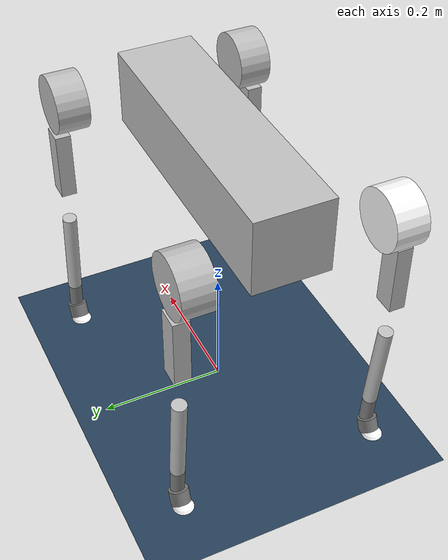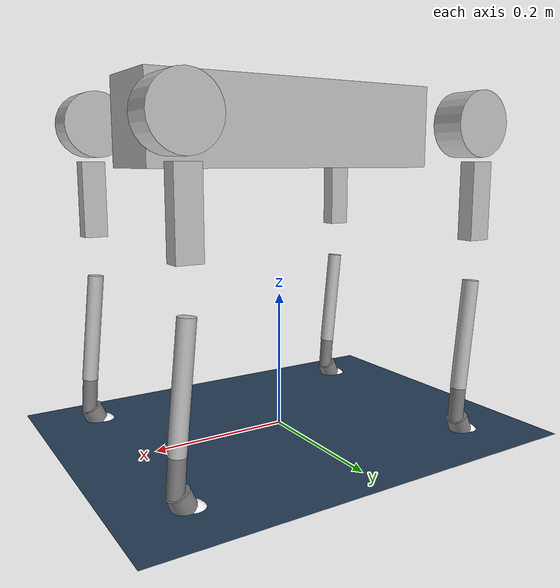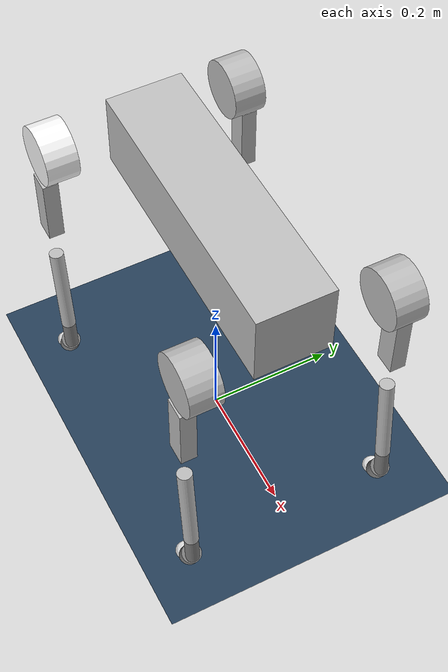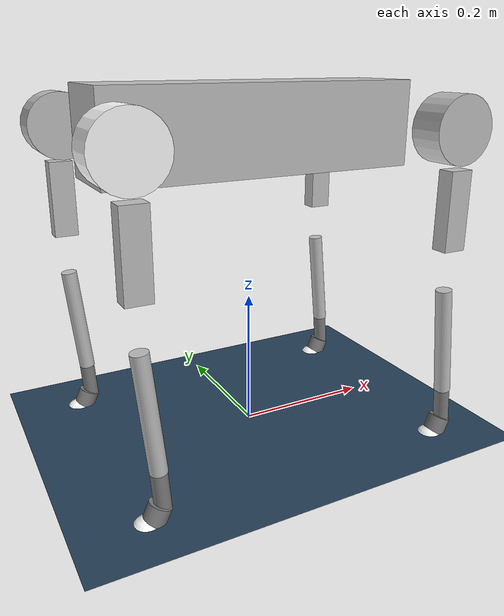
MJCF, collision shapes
<mujoco model="dog_rl scene positional">
  <!-- 基于 TOE_dog2/xml/scene.xml，改为位置控制版 -->
  <!-- 改动1：include 路径指向同目录的 dog_positional.xml（位置控制方案） -->
  <!-- 改动2：删除原 scene 的楼梯/断桥/高墙等场地 geom，只保留干净地板 -->
  <!--        原因：Step 1 验证站立 + 后续训练 trot 都不需要这些障碍物 -->
  <include file="dog_positional.xml"/>

  <statistic center="0 0 0.1" extent="0.8"/>

  <visual>
    <headlight diffuse="0.6 0.6 0.6" ambient="0.3 0.3 0.3" specular="0 0 0"/>
    <rgba haze="0.15 0.25 0.35 1"/>
    <global azimuth="-130" elevation="-20"/>
  </visual>

  <asset>
    <texture type="skybox" builtin="gradient" rgb1="0.3 0.5 0.7" rgb2="0 0 0" width="512" height="3072"/>
    <texture type="2d" name="groundplane" builtin="checker" mark="edge" rgb1="0.2 0.3 0.4" rgb2="0.1 0.2 0.3"
      markrgb="0.8 0.8 0.8" width="300" height="300"/>
    <material name="groundplane" texture="groundplane" texuniform="true" texrepeat="5 5" reflectance="0.2"/>
  </asset>

  <worldbody>
    <light pos="0 0 1.5" dir="0 0 -1" directional="true"/>
    <geom name="floor" size="0 0 0.05" type="plane" material="groundplane" friction="1.2 0.1 0.01"/>
  </worldbody>
</mujoco>

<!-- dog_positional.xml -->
<mujoco model="dog_positional">
  <!-- 基于 TOE_dog2/xml/dog.xml，按 agents.md 决策1 改造为位置控制方案 -->
  <!-- 改动1：meshdir 改为绝对路径，指向原 TOE_dog2 资产目录（不复制 STL） -->
  <compiler angle="radian" meshdir="d:/data/Trae/robot-dog/TOE_dog2/xml/assets" autolimits="true" />

  <option cone="elliptic" impratio="100" />
  <default>
    <default class="dog">
      <geom friction="0.4" margin="0.001" condim="1"/>
      <joint axis="0 1 0" damping="0.1" armature="0.01" frictionloss="0.2"/>
      <default class="abduction">
        <joint axis="1 0 0" range="-1.0472 1.0472"/>
      </default>
      <default class="hip">
        <default class="front_hip">
          <joint range="-1.5708 3.4907"/>
        </default>
        <default class="back_hip">
          <joint range="-0.5236 4.5379"/>
        </default>
      </default>
      <default class="knee">
        <joint range="-2.7227 -0.83776"/>
      </default>
      <default class="visual">
        <geom type="mesh" contype="0" conaffinity="0" group="2"/>
      </default>
      <default class="collision">
        <geom group="3"/>
        <default class="foot">
          <geom size="0.022" pos="-0.002 0 -0.213" priority="1" condim="6" friction="0.9 0.02 0.01"/>
        </default>
      </default>
    </default>
  </default>
  <asset>
    <mesh name="base" file="base.STL"/>
    <mesh name="FL_hip" file="FL_hip.STL"/>
    <mesh name="L_thigh" file="L_thigh.STL"/>
    <mesh name="calf" file="calf.STL"/>
    <mesh name="foot" file="foot.stl"/>
    <mesh name="FR_hip" file="FR_hip.STL"/>
    <mesh name="R_thigh" file="R_thigh.STL"/>
    <mesh name="RL_hip" file="RL_hip.STL"/>
    <mesh name="RR_hip" file="RR_hip.STL"/>
  </asset>

  <worldbody>
    <body name="base_link" pos="0 0 0.445" childclass="dog">
    <freejoint />
    <inertial pos="9.86379408949578E-05 -0.000228650036753486 -0.00925201672369771" quat="-0.000543471 0.713435 -0.00173769 0.700719"
        mass="6.5" diaginertia="0.109146 0.091188 0.0290862" />
    <geom type="mesh" contype="0" conaffinity="0" group="1" density="0" rgba="0.752941 0.752941 0.752941 1" mesh="base"/>

    <geom size="0.225 0.06 0.06" type="box" rgba="0.752941 0.752941 0.752941 1" class="collision"/>

    <site name='imu' size='0.01' pos='0.0 0 0.0'/>
    <body name="FL_hip" pos="0.22337 0.06 0">
      <inertial pos="-0.00478669 1.90134e-05 0.000220638" quat="0.543385 0.393149 0.59332 0.445126" mass="1.06948" diaginertia="0.000616962 0.00060064 0.000553598"/>
      <joint name="FL_hip_joint" pos="0 0 0" axis="1 0 0" range="-1 1" actuatorfrcrange="-20 20"/>
      <geom type="mesh" contype="0" conaffinity="0" group="1" density="0" rgba="0.752941 0.752941 0.752941 1" mesh="FL_hip" class="visual"/>
      <geom size="0.046 0.025" pos="0 0.09 0" quat="0.707107 0.707107 0 0" type="cylinder" rgba="0.752941 0.752941 0.752941 1" class="collision"/>
      <body name="FL_thigh" pos="0 0.1039 0">
        <inertial pos="-0.0023115 -0.0259576 -0.0356322" quat="0.992657 -0.109729 0.0350175 0.0369386" mass="1.55793" diaginertia="0.00600418 0.0059368 0.00120337"/>
        <joint name="FL_thigh_joint" pos="0 0 0" axis="0 1 0" range="-1.5 3" actuatorfrcrange="-20 20"/>
        <geom type="mesh" contype="0" conaffinity="0" group="1" density="0" rgba="0.752941 0.752941 0.752941 1" mesh="L_thigh"/>
        <geom size="0.055 0.01225 0.017" pos="0 0 -0.1065" quat="0.707107 0 0.707107 0" type="box" rgba="0.752941 0.752941 0.752941 1" class="collision"/>
        <body name="FL_calf" pos="0 0 -0.22">
          <inertial pos="0.00621509 -3.74074e-05 -0.131004" quat="0.707636 -0.00832079 -0.00797709 0.706483" mass="0.336118" diaginertia="0.00319573 0.00318278 5.01358e-05"/>
          <joint name="FL_calf_joint" pos="0 0 0" axis="0 1 0" range="-2.5 -0.85" actuatorfrcrange="-25 25"/>
          <geom type="mesh" contype="0" conaffinity="0" group="1" density="0" rgba="0.752941 0.752941 0.752941 1" mesh="calf"/>
          <geom size="0.0115 0.08" pos="0.008 0 -0.08" quat="0.99875 0 -0.0499792 0" type="cylinder" rgba="0.752941 0.752941 0.752941 1" class="collision"/>
          <geom size="0.011 0.025" pos="0.0172383 0 -0.184129" quat="0.99935 0 -0.0360572 0" type="cylinder" class="collision"/>
          <geom size="0.0155 0.016" pos="0.00980871 0 -0.219354" quat="0.979277 0 0.202524 0" type="cylinder" class="collision"/>
          <geom pos="0 0 -0.24" quat="1 0 0 0" type="mesh" contype="0" conaffinity="0" group="1" density="0" rgba="1 1 1 1" mesh="foot"/>
          <geom size="0.022" pos="-0.002 0 -0.24" rgba="1 1 1 1" class="foot"/>
        </body>
      </body>
    </body>
    <body name="FR_hip" pos="0.22337 -0.06 0">
      <inertial pos="0 0 0" quat="0.59332 0.445126 0.543385 0.393149" mass="1.06948" diaginertia="0.000616962 0.00060064 0.000553598"/>
      <joint name="FR_hip_joint" pos="0 0 0" axis="1 0 0" range="-1 1" actuatorfrcrange="-20 20"/>
      <geom type="mesh" contype="0" conaffinity="0" group="1" density="0" rgba="0.752941 0.752941 0.752941 1" mesh="FR_hip"/>
      <geom size="0.046 0.025" pos="0 -0.09 0" quat="0.707107 0.707107 0 0" type="cylinder" rgba="0.752941 0.752941 0.752941 1" class="collision"/>
      <body name="FR_thigh" pos="0 -0.1039 0">
        <inertial pos="-0.00102168 0.0347852 -0.0207384" quat="0.992657 -0.109729 0.0350175 0.0369386" mass="1.55793" diaginertia="0.00600418 0.0059368 0.00120337"/>
        <joint name="FR_thigh_joint" pos="0 0 0" axis="0 1 0" range="-1.5 3" actuatorfrcrange="-20 20"/>
        <geom type="mesh" contype="0" conaffinity="0" group="1" density="0" rgba="0.752941 0.752941 0.752941 1" mesh="R_thigh"/>
        <geom size="0.055 0.01225 0.017" pos="0 0 -0.1065" quat="0.707107 0 0.707107 0" type="box" rgba="0.752941 0.752941 0.752941 1" class="collision"/>
        <body name="FR_calf" pos="0 0 -0.22">
          <inertial pos="0.00621509 -3.74074e-05 -0.131004" quat="0.707636 -0.00832079 -0.00797709 0.706483" mass="0.336118" diaginertia="0.00319573 0.00318278 5.01358e-05"/>
          <joint name="FR_calf_joint" pos="0 0 0" axis="0 1 0" range="-2.5 -0.85" actuatorfrcrange="-25 25"/>
          <geom type="mesh" contype="0" conaffinity="0" group="1" density="0" rgba="0.752941 0.752941 0.752941 1" mesh="calf"/>
          <geom size="0.0115 0.08" pos="0.008 0 -0.08" quat="0.99875 0 -0.0499792 0" type="cylinder" rgba="0.752941 0.752941 0.752941 1" class="collision"/>
          <geom size="0.011 0.025" pos="0.0172383 0 -0.184129" quat="0.99935 0 -0.0360572 0" type="cylinder" class="collision"/>
          <geom size="0.0155 0.016" pos="0.00980871 0 -0.219354" quat="0.979277 0 0.202524 0" type="cylinder" class="collision"/>
          <geom pos="0 0 -0.24" quat="1 0 0 0" type="mesh" contype="0" conaffinity="0" group="1" density="0" rgba="1 1 1 1" mesh="foot"/>
          <geom size="0.022" pos="-0.002 0 -0.24" rgba="1 1 1 1" class="foot"/>
        </body>
      </body>
    </body>
    <body name="RL_hip" pos="-0.22337 0.06 0">
      <inertial pos="0.00478669 1.87933e-05 -0.000220657" quat="0.445371 0.593125 0.393326 0.54327" mass="1.06948" diaginertia="0.000616955 0.000600636 0.000553598"/>
      <joint name="RL_hip_joint" pos="0 0 0" axis="1 0 0" range="-1 1" actuatorfrcrange="-20 20"/>
      <geom type="mesh" contype="0" conaffinity="0" group="1" density="0" rgba="0.752941 0.752941 0.752941 1" mesh="RL_hip"/>
      <geom size="0.046 0.025" pos="0 0.09 0" quat="0.707107 0.707107 0 0" type="cylinder" rgba="0.752941 0.752941 0.752941 1" class="collision"/>
      <body name="RL_thigh" pos="0 0.1039 0">
        <inertial pos="-0.00245813 -0.0259576 -0.0351974" quat="0.990985 0.110735 0.0396787 -0.0641195" mass="1.55025" diaginertia="0.00570289 0.00563221 0.00120498"/>
        <joint name="RL_thigh_joint" pos="0 0 0" axis="0 1 0" range="-1.5 3" actuatorfrcrange="-20 20"/>
        <geom type="mesh" contype="0" conaffinity="0" group="1" density="0" rgba="0.752941 0.752941 0.752941 1" mesh="L_thigh"/>
        <geom size="0.055 0.01225 0.017" pos="0 0 -0.1065" quat="0.707107 0 0.707107 0" type="box" rgba="0.752941 0.752941 0.752941 1" class="collision"/>
        <body name="RL_calf" pos="0 0 -0.22">
          <inertial pos="0.00621509 -3.74074e-05 -0.131004" quat="0.707636 -0.00832079 -0.00797709 0.706483" mass="0.336118" diaginertia="0.00319573 0.00318278 5.01358e-05"/>
          <joint name="RL_calf_joint" pos="0 0 0" axis="0 1 0" range="-2.5 -0.85" actuatorfrcrange="-25 25"/>
          <geom type="mesh" contype="0" conaffinity="0" group="1" density="0" rgba="0.752941 0.752941 0.752941 1" mesh="calf"/>
          <geom size="0.0115 0.08" pos="0.008 0 -0.08" quat="0.99875 0 -0.0499792 0" type="cylinder" rgba="0.752941 0.752941 0.752941 1" class="collision"/>
          <geom size="0.011 0.025" pos="0.0172383 0 -0.184129" quat="0.99935 0 -0.0360572 0" type="cylinder" class="collision"/>
          <geom size="0.0155 0.016" pos="0.00980871 0 -0.219354" quat="0.979277 0 0.202524 0" type="cylinder" class="collision"/>
          <geom pos="0 0 -0.24" quat="1 0 0 0" type="mesh" contype="0" conaffinity="0" group="1" density="0" rgba="1 1 1 1" mesh="foot"/>
          <geom size="0.022" pos="-0.002 0 -0.24" rgba="1 1 1 1" class="foot"/>
        </body>
      </body>
    </body>
    <body name="RR_hip" pos="-0.22337 -0.06 0">
      <inertial pos="0 0 0" quat="0.393382 0.543235 0.445412 0.593089" mass="1.06948" diaginertia="0.000616964 0.000600637 0.000553599"/>
      <joint name="RR_hip_joint" pos="0 0 0" axis="1 0 0" range="-1 1" actuatorfrcrange="-20 20"/>
      <geom type="mesh" contype="0" conaffinity="0" group="1" density="0" rgba="1 1 1 1" mesh="RR_hip"/>
      <geom size="0.046 0.025" pos="0 -0.09 0" quat="0.707107 0.707107 0 0" type="cylinder" rgba="1 1 1 1" class="collision"/>
      <body name="RR_thigh" pos="0 -0.1039 0">
        <inertial pos="-0.000904252 0.0347851 -0.0209699" quat="0.99094 -0.11144 0.0403121 0.0632004" mass="1.55005" diaginertia="0.00570564 0.00563926 0.00120469"/>
        <joint name="RR_thigh_joint" pos="0 0 0" axis="0 1 0" range="-1.5 3" actuatorfrcrange="-20 20"/>
        <geom type="mesh" contype="0" conaffinity="0" group="1" density="0" rgba="0.752941 0.752941 0.752941 1" mesh="R_thigh"/>
        <geom size="0.055 0.01225 0.017" pos="0 0 -0.1065" quat="0.707107 0 0.707107 0" type="box" rgba="0.752941 0.752941 0.752941 1" class="collision"/>
        <body name="RR_calf" pos="0 0 -0.22">
          <inertial pos="0.00624462 -3.74074e-05 -0.131053" quat="0.70761 -0.00840943 -0.00806572 0.706507" mass="0.336118" diaginertia="0.00319826 0.00318522 5.02364e-05"/>
          <joint name="RR_calf_joint" pos="0 0 0" axis="0 1 0" range="-2.5 -0.85" actuatorfrcrange="-25 25"/>
          <geom type="mesh" contype="0" conaffinity="0" group="1" density="0" rgba="0.752941 0.752941 0.752941 1" mesh="calf"/>
          <geom size="0.0115 0.08" pos="0.008 0 -0.08" quat="0.99875 0 -0.0499792 0" type="cylinder" rgba="0.752941 0.752941 0.752941 1" class="collision"/>
          <geom size="0.011 0.025" pos="0.0174683 0 -0.184509" quat="0.99935 0 -0.0360572 0" type="cylinder" class="collision"/>
          <geom size="0.0155 0.016" pos="0.0100387 0 -0.219734" quat="0.979277 0 0.202524 0" type="cylinder" class="collision"/>
          <geom pos="0 0 -0.24" quat="1 0 0 0" type="mesh" contype="0" conaffinity="0" group="1" density="0" rgba="1 1 1 1" mesh="foot"/>
          <geom size="0.022" pos="-0.002 0 -0.24" rgba="1 1 1 1" class="foot"/>
        </body>
      </body>
      </body>

    </body>
  </worldbody>

  <!-- kp=60, kv=2（agents.md 决策1，对齐实机 MIT 模式默认） -->
  <!-- ctrlrange 取关节角限位（autolimits=true 也已继承，显式写出更清晰） -->
  <!-- 顺序：[FL, FR, RL, RR] × [hip, thigh, calf]，与 q_default 一致 -->
  <actuator>
    <position name="FL_hip"    joint="FL_hip_joint"    kp="60" kv="2" ctrllimited="true" ctrlrange="-1 1"/>
    <position name="FL_thigh"  joint="FL_thigh_joint"  kp="60" kv="2" ctrllimited="true" ctrlrange="-1.5 3"/>
    <position name="FL_calf"   joint="FL_calf_joint"   kp="60" kv="2" ctrllimited="true" ctrlrange="-2.5 -0.85"/>

    <position name="FR_hip"    joint="FR_hip_joint"    kp="60" kv="2" ctrllimited="true" ctrlrange="-1 1"/>
    <position name="FR_thigh"  joint="FR_thigh_joint"  kp="60" kv="2" ctrllimited="true" ctrlrange="-1.5 3"/>
    <position name="FR_calf"   joint="FR_calf_joint"   kp="60" kv="2" ctrllimited="true" ctrlrange="-2.5 -0.85"/>

    <position name="RL_hip"    joint="RL_hip_joint"    kp="60" kv="2" ctrllimited="true" ctrlrange="-1 1"/>
    <position name="RL_thigh"  joint="RL_thigh_joint"  kp="60" kv="2" ctrllimited="true" ctrlrange="-1.5 3"/>
    <position name="RL_calf"   joint="RL_calf_joint"   kp="60" kv="2" ctrllimited="true" ctrlrange="-2.5 -0.85"/>

    <position name="RR_hip"    joint="RR_hip_joint"    kp="60" kv="2" ctrllimited="true" ctrlrange="-1 1"/>
    <position name="RR_thigh"  joint="RR_thigh_joint"  kp="60" kv="2" ctrllimited="true" ctrlrange="-1.5 3"/>
    <position name="RR_calf"   joint="RR_calf_joint"   kp="60" kv="2" ctrllimited="true" ctrlrange="-2.5 -0.85"/>
  </actuator>

  <sensor>
    <jointpos name="FL_hip_pos" joint="FL_hip_joint" />
    <jointpos name="FL_thigh_pos" joint="FL_thigh_joint" />
    <jointpos name="FL_calf_pos" joint="FL_calf_joint" />
    <jointpos name="FR_hip_pos" joint="FR_hip_joint" />
    <jointpos name="FR_thigh_pos" joint="FR_thigh_joint" />
    <jointpos name="FR_calf_pos" joint="FR_calf_joint" />
    <jointpos name="RL_hip_pos" joint="RL_hip_joint" />
    <jointpos name="RL_thigh_pos" joint="RL_thigh_joint" />
    <jointpos name="RL_calf_pos" joint="RL_calf_joint" />
    <jointpos name="RR_hip_pos" joint="RR_hip_joint" />
    <jointpos name="RR_thigh_pos" joint="RR_thigh_joint" />
    <jointpos name="RR_calf_pos" joint="RR_calf_joint" />

    <jointvel name="FL_hip_vel" joint="FL_hip_joint" />
    <jointvel name="FL_thigh_vel" joint="FL_thigh_joint" />
    <jointvel name="FL_calf_vel" joint="FL_calf_joint" />
    <jointvel name="FR_hip_vel" joint="FR_hip_joint" />
    <jointvel name="FR_thigh_vel" joint="FR_thigh_joint" />
    <jointvel name="FR_calf_vel" joint="FR_calf_joint" />
    <jointvel name="RL_hip_vel" joint="RL_hip_joint" />
    <jointvel name="RL_thigh_vel" joint="RL_thigh_joint" />
    <jointvel name="RL_calf_vel" joint="RL_calf_joint" />
    <jointvel name="RR_hip_vel" joint="RR_hip_joint" />
    <jointvel name="RR_thigh_vel" joint="RR_thigh_joint" />
    <jointvel name="RR_calf_vel" joint="RR_calf_joint" />

    <jointactuatorfrc name="FL_hip_torque" joint="FL_hip_joint" noise="0.01" />
    <jointactuatorfrc name="FL_thigh_torque" joint="FL_thigh_joint" noise="0.01" />
    <jointactuatorfrc name="FL_calf_torque" joint="FL_calf_joint" noise="0.01" />
    <jointactuatorfrc name="FR_hip_torque" joint="FR_hip_joint" noise="0.01" />
    <jointactuatorfrc name="FR_thigh_torque" joint="FR_thigh_joint" noise="0.01" />
    <jointactuatorfrc name="FR_calf_torque" joint="FR_calf_joint" noise="0.01" />
    <jointactuatorfrc name="RL_hip_torque" joint="RL_hip_joint" noise="0.01" />
    <jointactuatorfrc name="RL_thigh_torque" joint="RL_thigh_joint" noise="0.01" />
    <jointactuatorfrc name="RL_calf_torque" joint="RL_calf_joint" noise="0.01" />
    <jointactuatorfrc name="RR_hip_torque" joint="RR_hip_joint" noise="0.01" />
    <jointactuatorfrc name="RR_thigh_torque" joint="RR_thigh_joint" noise="0.01" />
    <jointactuatorfrc name="RR_calf_torque" joint="RR_calf_joint" noise="0.01" />

    <framequat     name='imu_quat' objtype='site' noise='0.001' objname='imu'/>
    <framepos      name='position' objtype='site' noise='0.001' objname='imu'/>
    <framelinvel  name="base_lin_vel" objtype="site" objname="imu" />
    <gyro          name='angular-velocity'    site='imu' noise='0.005' cutoff='34.9'/>
    <velocimeter   name='linear-velocity'     site='imu' noise='0.001' cutoff='30'/>
    <accelerometer name='linear-acceleration' site='imu' noise='0.005' cutoff='157'/>
    <magnetometer  name='magnetometer'        site='imu'/>
  </sensor>

  <!-- 改动3：启用 keyframe home（站立姿态） -->
  <!-- qpos 前 7 维 = freejoint [xyz=0 0 0.27, quat=1 0 0 0]，后 12 维 = [0,0.9,-1.8]×4 -->
  <!-- ctrl 与 actuator 顺序一致：[FL, FR, RL, RR] × [hip=0, thigh=0.9, calf=-1.8] -->
  <keyframe>
    <key name="home" qpos="0 0 0.27 1 0 0 0 0 0.9 -1.8 0 0.9 -1.8 0 0.9 -1.8 0 0.9 -1.8"
      ctrl="0 0.9 -1.8 0 0.9 -1.8 0 0.9 -1.8 0 0.9 -1.8" />
  </keyframe>
</mujoco>
